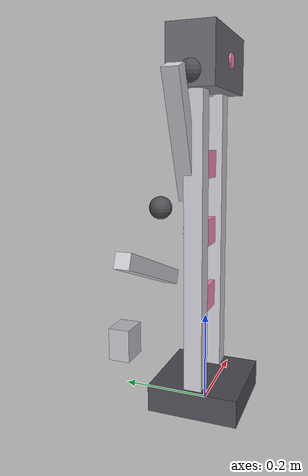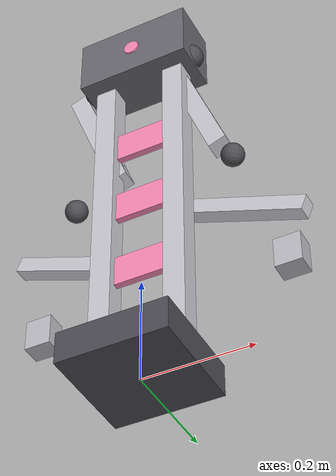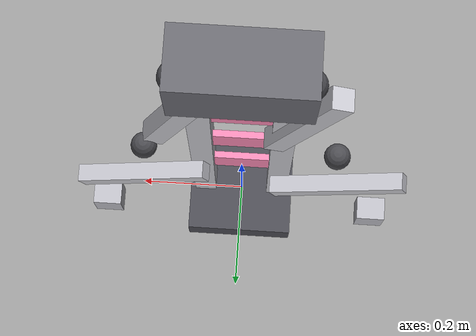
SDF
<?xml version='1.0' encoding='utf-8'?>
<sdf version="1.7">
  <model name="open_arm">
    <static>true</static>

    <!-- base pad - dark gray, 0.20 x 0.20 x 0.06 -->
    <link name="base_pad">
      <pose>0 0 0.030 0 0 0</pose>
      <visual name="v">
        <geometry><box><size>0.20 0.20 0.06</size></box></geometry>
        <material>
          <ambient>0.22 0.22 0.24 1</ambient>
          <diffuse>0.30 0.30 0.33 1</diffuse>
          <specular>0.35 0.35 0.35 1</specular>
        </material>
      </visual>
      <collision name="c"><geometry><box><size>0.20 0.20 0.06</size></box></geometry></collision>
    </link>

    <!-- LEFT column - aluminum silver, 0.04 x 0.04 x 0.63 -->
    <link name="col_left">
      <pose>-0.07 0 0.375 0 0 0</pose>
      <visual name="v">
        <geometry><box><size>0.04 0.04 0.63</size></box></geometry>
        <material>
          <ambient>0.65 0.65 0.68 1</ambient>
          <diffuse>0.80 0.80 0.83 1</diffuse>
          <specular>0.6 0.6 0.6 1</specular>
        </material>
      </visual>
    </link>
    <!-- RIGHT column -->
    <link name="col_right">
      <pose>0.07 0 0.375 0 0 0</pose>
      <visual name="v">
        <geometry><box><size>0.04 0.04 0.63</size></box></geometry>
        <material>
          <ambient>0.65 0.65 0.68 1</ambient>
          <diffuse>0.80 0.80 0.83 1</diffuse>
          <specular>0.6 0.6 0.6 1</specular>
        </material>
      </visual>
    </link>

    <!-- pink mid strips - 3 horizontal accents between columns -->
    <link name="strip_low">
      <pose>0 0 0.240 0 0 0</pose>
      <visual name="v">
        <geometry><box><size>0.14 0.012 0.06</size></box></geometry>
        <material>
          <ambient>0.95 0.40 0.60 1</ambient>
          <diffuse>1.0 0.55 0.72 1</diffuse>
          <emissive>0.06 0.02 0.04 1</emissive>
        </material>
      </visual>
    </link>
    <link name="strip_mid">
      <pose>0 0 0.390 0 0 0</pose>
      <visual name="v">
        <geometry><box><size>0.14 0.012 0.06</size></box></geometry>
        <material>
          <ambient>0.95 0.40 0.60 1</ambient>
          <diffuse>1.0 0.55 0.72 1</diffuse>
          <emissive>0.06 0.02 0.04 1</emissive>
        </material>
      </visual>
    </link>
    <link name="strip_high">
      <pose>0 0 0.540 0 0 0</pose>
      <visual name="v">
        <geometry><box><size>0.14 0.012 0.06</size></box></geometry>
        <material>
          <ambient>0.95 0.40 0.60 1</ambient>
          <diffuse>1.0 0.55 0.72 1</diffuse>
          <emissive>0.06 0.02 0.04 1</emissive>
        </material>
      </visual>
    </link>

    <!-- shoulder block - dark gray top housing, 0.22 x 0.10 x 0.12 -->
    <link name="shoulder_block">
      <pose>0 0 0.750 0 0 0</pose>
      <visual name="v">
        <geometry><box><size>0.22 0.10 0.12</size></box></geometry>
        <material>
          <ambient>0.28 0.28 0.30 1</ambient>
          <diffuse>0.42 0.42 0.45 1</diffuse>
          <specular>0.4 0.4 0.4 1</specular>
        </material>
      </visual>
      <collision name="c"><geometry><box><size>0.22 0.10 0.12</size></box></geometry></collision>
    </link>

    <!-- PinkLAB logo accent on shoulder - small pink dot front -->
    <link name="shoulder_logo">
      <pose>0 -0.051 0.750 0 0 0</pose>
      <visual name="v">
        <geometry><cylinder><radius>0.015</radius><length>0.005</length></cylinder></geometry>
        <pose>0 0 0 1.5708 0 0</pose>
        <material>
          <ambient>0.95 0.40 0.60 1</ambient>
          <diffuse>1.0 0.55 0.72 1</diffuse>
          <emissive>0.10 0.04 0.06 1</emissive>
        </material>
      </visual>
    </link>

    <!-- LEFT arm - hanging from shoulder, slanted forward -->
    <link name="left_shoulder_joint">
      <pose>-0.10 0 0.720 0 0 0</pose>
      <visual name="v">
        <geometry><sphere><radius>0.025</radius></sphere></geometry>
        <material>
          <ambient>0.20 0.20 0.22 1</ambient>
          <diffuse>0.30 0.30 0.32 1</diffuse>
        </material>
      </visual>
    </link>
    <link name="left_upper">
      <pose>-0.10 0.02 0.600 0 -0.35 0</pose>
      <visual name="v">
        <geometry><box><size>0.035 0.035 0.27</size></box></geometry>
        <material>
          <ambient>0.65 0.65 0.68 1</ambient>
          <diffuse>0.80 0.80 0.83 1</diffuse>
          <specular>0.6 0.6 0.6 1</specular>
        </material>
      </visual>
    </link>
    <link name="left_elbow">
      <pose>-0.16 0.04 0.465 0 0 0</pose>
      <visual name="v">
        <geometry><sphere><radius>0.022</radius></sphere></geometry>
        <material>
          <ambient>0.20 0.20 0.22 1</ambient>
          <diffuse>0.30 0.30 0.32 1</diffuse>
        </material>
      </visual>
    </link>
    <link name="left_forearm">
      <pose>-0.17 0.06 0.345 0 -1.2 0</pose>
      <visual name="v">
        <geometry><box><size>0.030 0.030 0.24</size></box></geometry>
        <material>
          <ambient>0.65 0.65 0.68 1</ambient>
          <diffuse>0.80 0.80 0.83 1</diffuse>
          <specular>0.6 0.6 0.6 1</specular>
        </material>
      </visual>
    </link>
    <link name="left_gripper">
      <pose>-0.24 0.08 0.225 0 0 0</pose>
      <visual name="v">
        <geometry><box><size>0.05 0.04 0.06</size></box></geometry>
        <material>
          <ambient>0.55 0.55 0.58 1</ambient>
          <diffuse>0.75 0.75 0.78 1</diffuse>
          <specular>0.5 0.5 0.5 1</specular>
        </material>
      </visual>
    </link>

    <!-- RIGHT arm - mirror -->
    <link name="right_shoulder_joint">
      <pose>0.10 0 0.720 0 0 0</pose>
      <visual name="v">
        <geometry><sphere><radius>0.025</radius></sphere></geometry>
        <material>
          <ambient>0.20 0.20 0.22 1</ambient>
          <diffuse>0.30 0.30 0.32 1</diffuse>
        </material>
      </visual>
    </link>
    <link name="right_upper">
      <pose>0.10 0.02 0.600 0 -0.35 0</pose>
      <visual name="v">
        <geometry><box><size>0.035 0.035 0.27</size></box></geometry>
        <material>
          <ambient>0.65 0.65 0.68 1</ambient>
          <diffuse>0.80 0.80 0.83 1</diffuse>
          <specular>0.6 0.6 0.6 1</specular>
        </material>
      </visual>
    </link>
    <link name="right_elbow">
      <pose>0.16 0.04 0.465 0 0 0</pose>
      <visual name="v">
        <geometry><sphere><radius>0.022</radius></sphere></geometry>
        <material>
          <ambient>0.20 0.20 0.22 1</ambient>
          <diffuse>0.30 0.30 0.32 1</diffuse>
        </material>
      </visual>
    </link>
    <link name="right_forearm">
      <pose>0.17 0.06 0.345 0 -1.2 0</pose>
      <visual name="v">
        <geometry><box><size>0.030 0.030 0.24</size></box></geometry>
        <material>
          <ambient>0.65 0.65 0.68 1</ambient>
          <diffuse>0.80 0.80 0.83 1</diffuse>
          <specular>0.6 0.6 0.6 1</specular>
        </material>
      </visual>
    </link>
    <link name="right_gripper">
      <pose>0.24 0.08 0.225 0 0 0</pose>
      <visual name="v">
        <geometry><box><size>0.05 0.04 0.06</size></box></geometry>
        <material>
          <ambient>0.55 0.55 0.58 1</ambient>
          <diffuse>0.75 0.75 0.78 1</diffuse>
          <specular>0.5 0.5 0.5 1</specular>
        </material>
      </visual>
    </link>
  </model>
</sdf>
